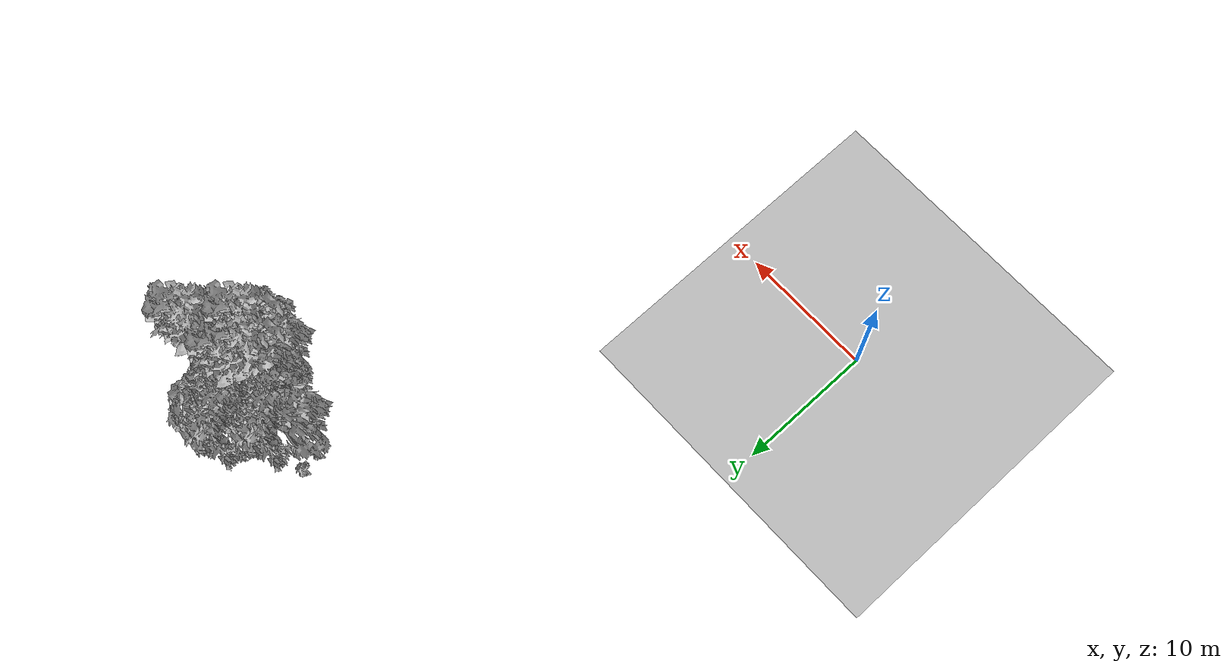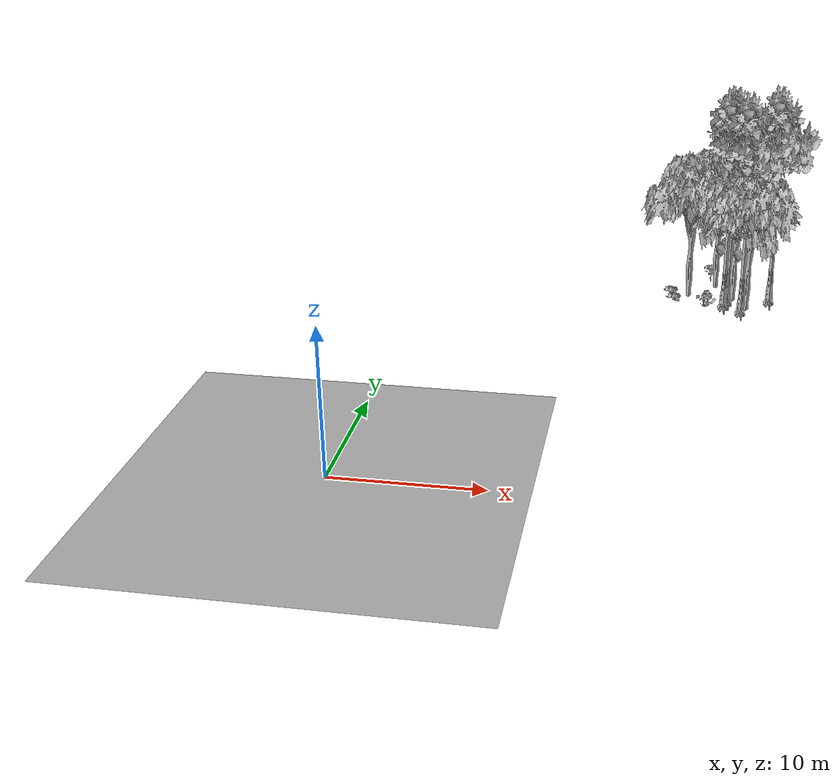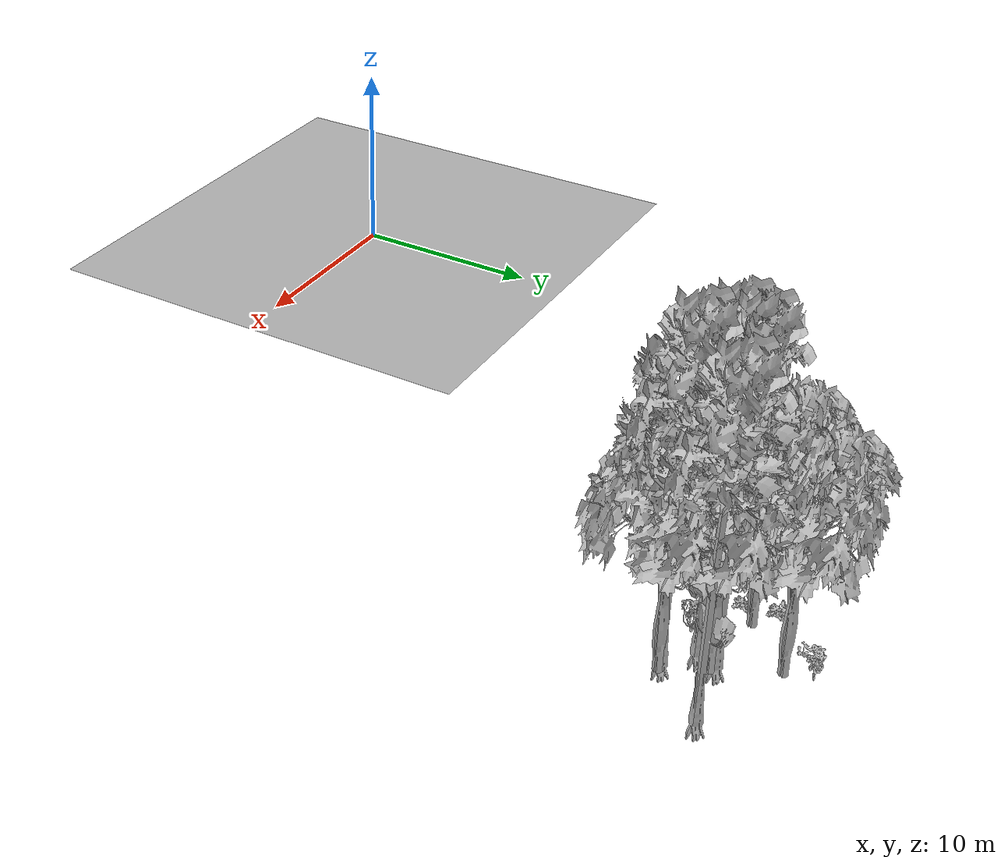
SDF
<sdf version="1.7">
 <world name="default">
  <model name="ground_plane">
   <static>1</static>
   <link name="link">
    <collision name="collision">
     <pose>-50 0 0 0 -0 0</pose>
     <geometry><plane><normal>0 0 1</normal><size>80 80</size></plane></geometry>
     <surface><contact><ode><min_depth>0.01</min_depth><max_vel>0</max_vel></ode></contact></surface>
    </collision>
    <visual name="grass">
     <cast_shadows>0</cast_shadows>
     <geometry>
      <mesh>
       <scale>0.46714285714285714 0.46714285714285714 0.1</scale>
       <uri>file://grass_plane/meshes/grass_plane.dae</uri>
      </mesh>
     </geometry>
    </visual>
   </link>
  </model>
  <model name="Tree 71">
   <static>1</static>
   <pose>27.7739322990046 32.61497080232557 0 1.57079 -0 0</pose>
   <link name="link">
    <collision name="collision">
     <geometry><mesh><scale>3.5 5 3.5</scale><uri>model://tree_9/meshes/tree_9.obj</uri></mesh></geometry>
    </collision>
    <visual name="visual">
     <geometry><mesh><scale>3.5 5 3.5</scale><uri>model://tree_9/meshes/tree_9.obj</uri></mesh></geometry>
    </visual>
   </link>
  </model>
  <model name="Tree 182">
   <static>1</static>
   <pose>23.35814764373704 34.49401185578398 0 1.57079 -0 0</pose>
   <link name="link">
    <collision name="collision">
     <geometry><mesh><scale>3.5 5 3.5</scale><uri>model://tree_2/meshes/tree_2.obj</uri></mesh></geometry>
    </collision>
    <visual name="visual">
     <geometry><mesh><scale>3.5 5 3.5</scale><uri>model://tree_2/meshes/tree_2.obj</uri></mesh></geometry>
    </visual>
   </link>
  </model>
  <model name="Tree 190">
   <static>1</static>
   <pose>21.173050826024884 32.29806555338597 0 1.57079 -0 0</pose>
   <link name="link">
    <collision name="collision">
     <geometry><mesh><scale>3.5 5 3.5</scale><uri>model://tree_2/meshes/tree_2.obj</uri></mesh></geometry>
    </collision>
    <visual name="visual">
     <geometry><mesh><scale>3.5 5 3.5</scale><uri>model://tree_2/meshes/tree_2.obj</uri></mesh></geometry>
    </visual>
   </link>
  </model>
  <model name="Tree 255">
   <static>1</static>
   <pose>25.421203196458762 30.065008133246607 0 1.57079 -0 0</pose>
   <link name="link">
    <collision name="collision">
     <geometry><mesh><scale>3.5 5 3.5</scale><uri>model://tree_9/meshes/tree_9.obj</uri></mesh></geometry>
    </collision>
    <visual name="visual">
     <geometry><mesh><scale>3.5 5 3.5</scale><uri>model://tree_9/meshes/tree_9.obj</uri></mesh></geometry>
    </visual>
   </link>
  </model>
  <model name="Tree 278">
   <static>1</static>
   <pose>24.72068452789219 31.87900745719898 0 1.57079 -0 0</pose>
   <link name="link">
    <collision name="collision">
     <geometry><mesh><scale>3.5 5 3.5</scale><uri>model://tree_2/meshes/tree_2.obj</uri></mesh></geometry>
    </collision>
    <visual name="visual">
     <geometry><mesh><scale>3.5 5 3.5</scale><uri>model://tree_2/meshes/tree_2.obj</uri></mesh></geometry>
    </visual>
   </link>
  </model>
  <model name="Tree 343">
   <static>1</static>
   <pose>25.747750146516225 30.07196816933171 0 1.57079 -0 0</pose>
   <link name="link">
    <collision name="collision">
     <geometry><mesh><scale>3.5 5 3.5</scale><uri>model://tree_2/meshes/tree_2.obj</uri></mesh></geometry>
    </collision>
    <visual name="visual">
     <geometry><mesh><scale>3.5 5 3.5</scale><uri>model://tree_2/meshes/tree_2.obj</uri></mesh></geometry>
    </visual>
   </link>
  </model>
  <model name="Tree 594">
   <static>1</static>
   <pose>24.070668198062336 31.07693103511407 0 1.57079 -0 0</pose>
   <link name="link">
    <collision name="collision">
     <geometry><mesh><scale>3.5 5 3.5</scale><uri>model://tree_9/meshes/tree_9.obj</uri></mesh></geometry>
    </collision>
    <visual name="visual">
     <geometry><mesh><scale>3.5 5 3.5</scale><uri>model://tree_9/meshes/tree_9.obj</uri></mesh></geometry>
    </visual>
   </link>
  </model>
  <model name="Tree 622">
   <static>1</static>
   <pose>24.416156022866936 32.03846294323755 0 1.57079 -0 0</pose>
   <link name="link">
    <collision name="collision">
     <geometry><mesh><scale>3.5 5 3.5</scale><uri>model://tree_9/meshes/tree_9.obj</uri></mesh></geometry>
    </collision>
    <visual name="visual">
     <geometry><mesh><scale>3.5 5 3.5</scale><uri>model://tree_9/meshes/tree_9.obj</uri></mesh></geometry>
    </visual>
   </link>
  </model>
  <model name="Bush 61">
   <static>1</static>
   <pose>19.849440972579202 33.06573991933067 0 1.57079 -0 0</pose>
   <link name="link">
    <collision name="collision">
     <geometry><mesh><scale>2 2 2</scale><uri>model://bush_2/meshes/bush_2.obj</uri></mesh></geometry>
     <surface><contact><collide_without_contact>false</collide_without_contact></contact></surface>
    </collision>
    <visual name="visual">
     <geometry><mesh><scale>2 2 2</scale><uri>model://bush_2/meshes/bush_2.obj</uri></mesh></geometry>
    </visual>
   </link>
  </model>
  <model name="Bush 300">
   <static>1</static>
   <pose>20.12288781804336 31.61210444314733 0 1.57079 -0 0</pose>
   <link name="link">
    <collision name="collision">
     <geometry><mesh><scale>2 2 2</scale><uri>model://bush_2/meshes/bush_2.obj</uri></mesh></geometry>
     <surface><contact><collide_without_contact>false</collide_without_contact></contact></surface>
    </collision>
    <visual name="visual">
     <geometry><mesh><scale>2 2 2</scale><uri>model://bush_2/meshes/bush_2.obj</uri></mesh></geometry>
    </visual>
   </link>
  </model>
  <model name="Bush 423">
   <static>1</static>
   <pose>22.644172109797168 30.18044997127224 0 1.57079 -0 0</pose>
   <link name="link">
    <collision name="collision">
     <geometry><mesh><scale>2 2 2</scale><uri>model://bush_4/meshes/bush_4.obj</uri></mesh></geometry>
     <surface><contact><collide_without_contact>false</collide_without_contact></contact></surface>
    </collision>
    <visual name="visual">
     <geometry><mesh><scale>2 2 2</scale><uri>model://bush_4/meshes/bush_4.obj</uri></mesh></geometry>
    </visual>
   </link>
  </model>
  <model name="Bush 622">
   <static>1</static>
   <pose>23.094563597984397 35.68019267932374 0 1.57079 -0 0</pose>
   <link name="link">
    <collision name="collision">
     <geometry><mesh><scale>2 2 2</scale><uri>model://bush_5/meshes/bush_5.obj</uri></mesh></geometry>
     <surface><contact><collide_without_contact>false</collide_without_contact></contact></surface>
    </collision>
    <visual name="visual">
     <geometry><mesh><scale>2 2 2</scale><uri>model://bush_5/meshes/bush_5.obj</uri></mesh></geometry>
    </visual>
   </link>
  </model>
 </world>
</sdf>
